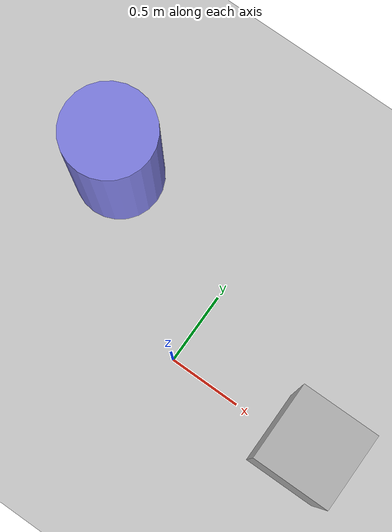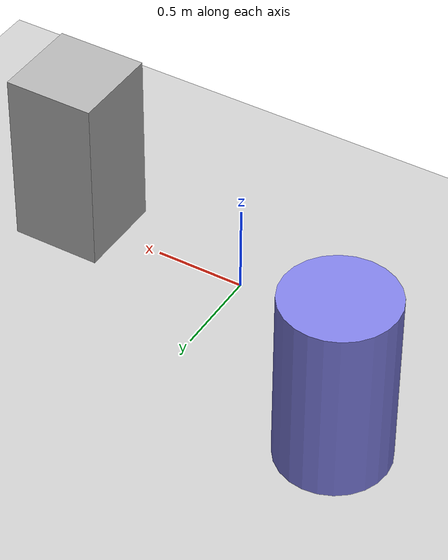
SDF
<?xml version="1.0" ?>
<sdf version="1.6">
  <world name="test_world">
    <!-- Include the outdoor playground world -->
    <include>
      <uri>model://ground_plane</uri>
    </include>

    <include>
      <uri>model://sun</uri>
    </include>

    <!-- Add a simple box obstacle -->
    <model name="obstacle_box">
      <pose>1.0 0.0 0.5 0 0 0</pose>
      <link name="link">
        <collision name="collision">
          <geometry>
            <box>
              <size>0.5 0.5 1.0</size>
            </box>
          </geometry>
        </collision>
        <visual name="visual">
          <geometry>
            <box>
              <size>0.5 0.5 1.0</size>
            </box>
          </geometry>
          <material>
            <ambient>0.5 0.5 0.5 1</ambient>
            <diffuse>0.7 0.7 0.7 1</diffuse>
          </material>
        </visual>
        <inertial>
          <mass>1.0</mass>
          <inertia>
            <ixx>0.1</ixx>
            <ixy>0</ixy>
            <ixz>0</ixz>
            <iyy>0.1</iyy>
            <iyz>0</iyz>
            <izz>0.1</izz>
          </inertia>
        </inertial>
      </link>
    </model>

    <!-- Add a cylinder obstacle -->
    <model name="obstacle_cylinder">
      <pose>-1.0 0.8 0.5 0 0 0</pose>
      <link name="link">
        <collision name="collision">
          <geometry>
            <cylinder>
              <radius>0.3</radius>
              <length>1.0</length>
            </cylinder>
          </geometry>
        </collision>
        <visual name="visual">
          <geometry>
            <cylinder>
              <radius>0.3</radius>
              <length>1.0</length>
            </cylinder>
          </geometry>
          <material>
            <ambient>0.3 0.3 0.7 1</ambient>
            <diffuse>0.5 0.5 0.9 1</diffuse>
          </material>
        </visual>
        <inertial>
          <mass>1.0</mass>
          <inertia>
            <ixx>0.1</ixx>
            <ixy>0</ixy>
            <ixz>0</ixz>
            <iyy>0.1</iyy>
            <iyz>0</iyz>
            <izz>0.1</izz>
          </inertia>
        </inertial>
      </link>
    </model>

    <!-- Physics parameters -->
    <physics name="default_physics" type="ode">
      <gravity>0 0 -9.8</gravity>
      <ode>
        <solver>
          <type>quick</type>
          <iters>10</iters>
          <sor>1.3</sor>
        </solver>
        <constraints>
          <cfm>0.00001</cfm>
          <erp>0.2</erp>
          <contact_max_correcting_vel>100</contact_max_correcting_vel>
          <contact_surface_layer>0.001</contact_surface_layer>
        </constraints>
      </ode>
    </physics>
  </world>
</sdf>
